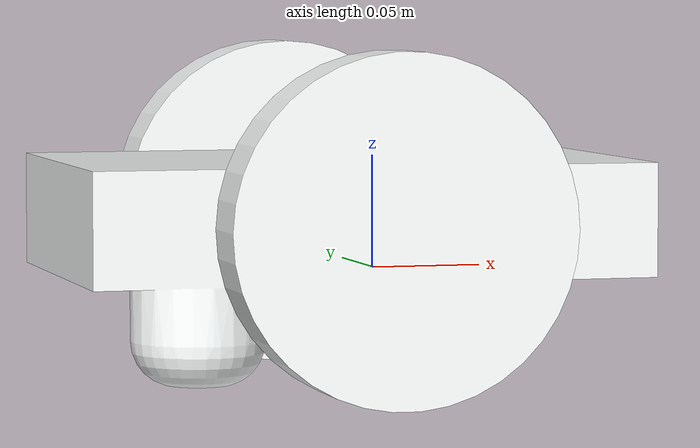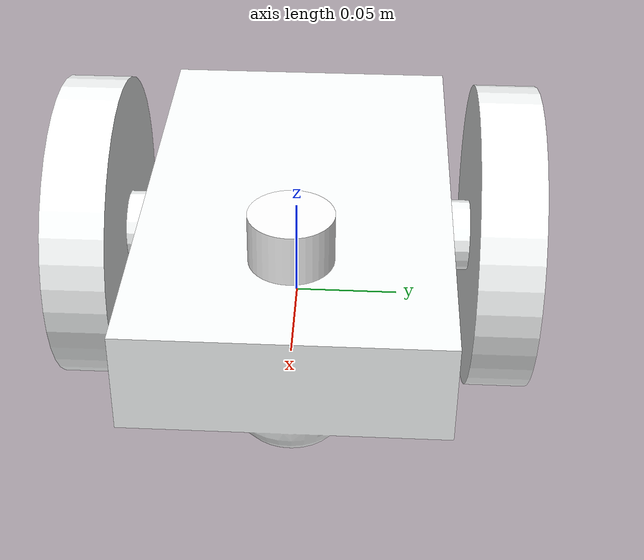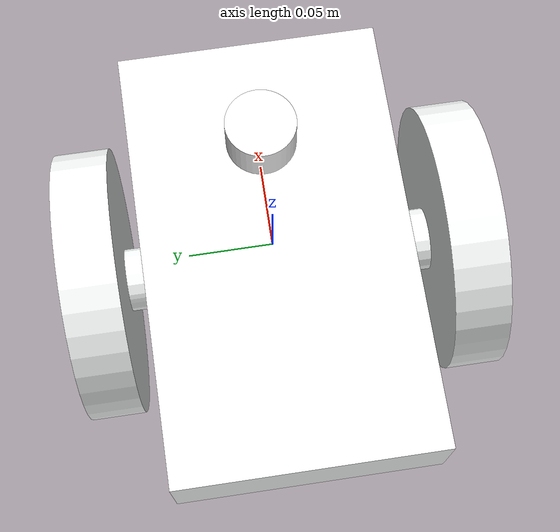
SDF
<sdf version='1.9'>
  <model name='sambot'>
    <link name='base_link'>
      <inertial>
        <pose>-0.017682 0.018086 -9.737099999999998e-19 0 0 0</pose>
        <mass>1.9859</mass>
        <inertia>
          <ixx>0.0042332999999999997</ixx>
          <ixy>-1.084202172485504e-19</ixy>
          <ixz>-3.2899999999999999e-19</ixz>
          <iyy>0.014104999999999999</iyy>
          <iyz>1.4390000000000001e-19</iyz>
          <izz>0.01174</izz>
        </inertia>
      </inertial>
      <collision name='base_link_collision'>
        <pose>0 0 0 0 0 0</pose>
        <geometry>
          <mesh>
            <scale>1 1 1</scale>
            <uri>model://sambot/meshes/base_link.STL</uri>
          </mesh>
        </geometry>
      </collision>
      <collision name='base_link_fixed_joint_lump__lidar_link_collision_1'>
        <pose>0.044818 0 0.049231 1.5708 0 0</pose>
        <geometry>
          <mesh>
            <scale>1 1 1</scale>
            <uri>model://sambot/meshes/lidar_link.STL</uri>
          </mesh>
        </geometry>
      </collision>
      <visual name='base_link_visual'>
        <pose>0 0 0 0 0 0</pose>
        <geometry>
          <mesh>
            <scale>1 1 1</scale>
            <uri>model://sambot/meshes/base_link.STL</uri>
          </mesh>
        </geometry>
        <material>
          <diffuse>0.9902 1 1 1</diffuse>
          <ambient>0.9902 1 1 1</ambient>
        </material>
      </visual>
      <visual name='base_link_fixed_joint_lump__lidar_link_visual_1'>
        <pose>0.044818 0 0.049231 1.5708 0 0</pose>
        <geometry>
          <mesh>
            <scale>1 1 1</scale>
            <uri>model://sambot/meshes/lidar_link.STL</uri>
          </mesh>
        </geometry>
        <material>
          <diffuse>1 1 1 1</diffuse>
          <ambient>1 1 1 1</ambient>
        </material>
      </visual>
    </link>
    <joint name='wheel_left' type='revolute'>
      <pose relative_to='base_link'>-0.017682 0.055 0.024231 0 -0.9901700000000002 0</pose>
      <parent>base_link</parent>
      <child>wheel_left_link</child>
      <axis>
        <xyz>0 1 0</xyz>
        <limit>
          <lower>-10000000000000000</lower>
          <upper>10000000000000000</upper>
        </limit>
        <dynamics>
          <spring_reference>0</spring_reference>
          <spring_stiffness>0</spring_stiffness>
        </dynamics>
      </axis>
    </joint>
    <link name='wheel_left_link'>
      <pose relative_to='wheel_left'>0 0 0 0 0 0</pose>
      <inertial>
        <pose>5.2042e-18 0.043451 -2.0817e-17 0 0 0</pose>
        <mass>0.55901000000000001</mass>
        <inertia>
          <ixx>0.00081428999999999996</ixx>
          <ixy>1.4223000000000001e-20</ixy>
          <ixz>-2.7104999999999999e-20</ixz>
          <iyy>0.0014954</iyy>
          <iyz>-2.7284e-21</iyz>
          <izz>0.00081428999999999996</izz>
        </inertia>
      </inertial>
      <collision name='wheel_left_link_collision'>
        <pose>0 0 0 0 0 0</pose>
        <geometry>
          <mesh>
            <scale>1 1 1</scale>
            <uri>model://sambot/meshes/wheel_left_link.STL</uri>
          </mesh>
        </geometry>
      </collision>
      <visual name='wheel_left_link_visual'>
        <pose>0 0 0 0 0 0</pose>
        <geometry>
          <mesh>
            <scale>1 1 1</scale>
            <uri>model://sambot/meshes/wheel_left_link.STL</uri>
          </mesh>
        </geometry>
        <material>
          <diffuse>0.9902 1 1 1</diffuse>
          <ambient>0.9902 1 1 1</ambient>
        </material>
      </visual>
    </link>
    <joint name='wheel_right' type='revolute'>
      <pose relative_to='base_link'>-0.017682 -0.055 0.024231 -3.141585307179587 0.58799 -5.089991771323275e-22</pose>
      <parent>base_link</parent>
      <child>wheel_right_link</child>
      <axis>
        <xyz>0 1 0</xyz>
        <limit>
          <lower>-10000000000000000</lower>
          <upper>10000000000000000</upper>
        </limit>
        <dynamics>
          <spring_reference>0</spring_reference>
          <spring_stiffness>0</spring_stiffness>
        </dynamics>
      </axis>
    </joint>
    <link name='wheel_right_link'>
      <pose relative_to='wheel_right'>0 0 0 0 0 0</pose>
      <inertial>
        <pose>-1.0408e-17 0.043451 1.5613e-17 0 0 0</pose>
        <mass>0.55901000000000001</mass>
        <inertia>
          <ixx>0.00081428999999999996</ixx>
          <ixy>3.2267999999999999e-20</ixy>
          <ixz>0</ixz>
          <iyy>0.0014954</iyy>
          <iyz>-9.9524999999999998e-22</iyz>
          <izz>0.00081428999999999996</izz>
        </inertia>
      </inertial>
      <collision name='wheel_right_link_collision'>
        <pose>0 0 0 0 0 0</pose>
        <geometry>
          <mesh>
            <scale>1 1 1</scale>
            <uri>model://sambot/meshes/wheel_right_link.STL</uri>
          </mesh>
        </geometry>
      </collision>
      <visual name='wheel_right_link_visual'>
        <pose>0 0 0 0 0 0</pose>
        <geometry>
          <mesh>
            <scale>1 1 1</scale>
            <uri>model://sambot/meshes/wheel_right_link.STL</uri>
          </mesh>
        </geometry>
        <material>
          <diffuse>0.9902 1 1 1</diffuse>
          <ambient>0.9902 1 1 1</ambient>
        </material>
      </visual>
    </link>
    <frame name='lidar' attached_to='base_link'>
      <pose>0.044818 0 0.049231 1.5708 -0 0</pose>
    </frame>
    <frame name='lidar_link' attached_to='lidar'/>
  </model>
</sdf>
